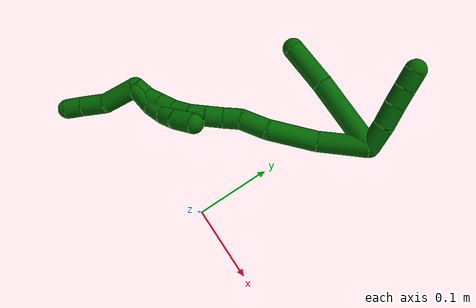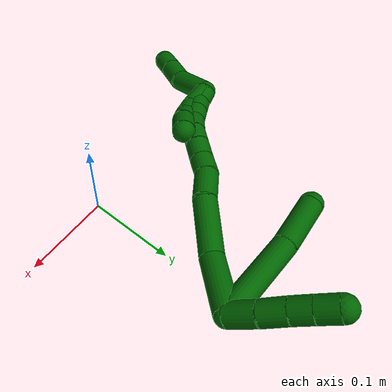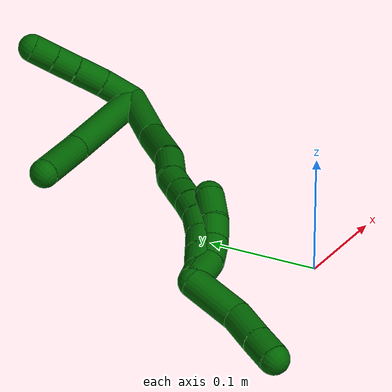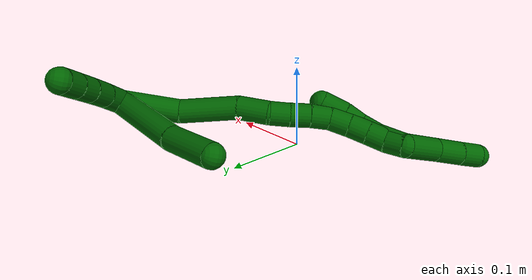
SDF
<sdf version="1.7">
 <world name="default">
  <model name="6">
   <static>0</static>
   <link name="6">
    <collision name="collision-cylinder-e_1_2_8">
     <pose>-0.041515 -0.019142 -0.012114 2.13503 -1.07129 -1.64585</pose>
     <geometry><cylinder><radius>0.0125</radius><length>0.094588</length></cylinder></geometry>
     <surface>
      <friction><ode><mu>1.16</mu><mu2>1.16</mu2><slip1>0</slip1><slip2>0</slip2></ode></friction>
      <contact><ode><kp>1e+06</kp><kd>1</kd><max_vel>0</max_vel><min_depth>0.001</min_depth></ode></contact>
     </surface>
    </collision>
    <visual name="visual-cylinder-e_1_2_8">
     <pose>-0.041515 -0.019142 -0.012114 2.13503 -1.07129 -1.64585</pose>
     <geometry><cylinder><radius>0.0125</radius><length>0.094588</length></cylinder></geometry>
     <material><ambient>0 0.392157 0.003922 1</ambient></material>
    </visual>
    <collision name="collision-cylinder-e_2_8_6">
     <pose>-0.105261 -0.052624 -0.032464 2.09209 -0.931236 -1.42969</pose>
     <geometry><cylinder><radius>0.0125</radius><length>0.055412</length></cylinder></geometry>
     <surface>
      <friction><ode><mu>1.16</mu><mu2>1.16</mu2><slip1>0</slip1><slip2>0</slip2></ode></friction>
      <contact><ode><kp>1e+06</kp><kd>1</kd><max_vel>0</max_vel><min_depth>0.001</min_depth></ode></contact>
     </surface>
    </collision>
    <visual name="visual-cylinder-e_2_8_6">
     <pose>-0.105261 -0.052624 -0.032464 2.09209 -0.931236 -1.42969</pose>
     <geometry><cylinder><radius>0.0125</radius><length>0.055412</length></cylinder></geometry>
     <material><ambient>0 0.392157 0.003922 1</ambient></material>
    </visual>
    <collision name="collision-cylinder-e_1_2_9">
     <pose>-0.005795 -0.007274 0.012106 0.541077 -0.389385 -0.109268</pose>
     <geometry><cylinder><radius>0.0125</radius><length>0.030532</length></cylinder></geometry>
     <surface>
      <friction><ode><mu>1.16</mu><mu2>1.16</mu2><slip1>0</slip1><slip2>0</slip2></ode></friction>
      <contact><ode><kp>1e+06</kp><kd>1</kd><max_vel>0</max_vel><min_depth>0.001</min_depth></ode></contact>
     </surface>
    </collision>
    <visual name="visual-cylinder-e_1_2_9">
     <pose>-0.005795 -0.007274 0.012106 0.541077 -0.389385 -0.109268</pose>
     <geometry><cylinder><radius>0.0125</radius><length>0.030532</length></cylinder></geometry>
     <material><ambient>0 0.392157 0.003922 1</ambient></material>
    </visual>
    <collision name="collision-cylinder-e_2_9_10">
     <pose>-0.017736 -0.021033 0.034157 0.577765 -0.477636 -0.144462</pose>
     <geometry><cylinder><radius>0.0125</radius><length>0.026737</length></cylinder></geometry>
     <surface>
      <friction><ode><mu>1.16</mu><mu2>1.16</mu2><slip1>0</slip1><slip2>0</slip2></ode></friction>
      <contact><ode><kp>1e+06</kp><kd>1</kd><max_vel>0</max_vel><min_depth>0.001</min_depth></ode></contact>
     </surface>
    </collision>
    <visual name="visual-cylinder-e_2_9_10">
     <pose>-0.017736 -0.021033 0.034157 0.577765 -0.477636 -0.144462</pose>
     <geometry><cylinder><radius>0.0125</radius><length>0.026737</length></cylinder></geometry>
     <material><ambient>0 0.392157 0.003922 1</ambient></material>
    </visual>
    <collision name="collision-cylinder-e_3_10_11">
     <pose>-0.028639 -0.032426 0.052204 0.544757 -0.465463 -0.13222</pose>
     <geometry><cylinder><radius>0.0125</radius><length>0.021202</length></cylinder></geometry>
     <surface>
      <friction><ode><mu>1.16</mu><mu2>1.16</mu2><slip1>0</slip1><slip2>0</slip2></ode></friction>
      <contact><ode><kp>1e+06</kp><kd>1</kd><max_vel>0</max_vel><min_depth>0.001</min_depth></ode></contact>
     </surface>
    </collision>
    <visual name="visual-cylinder-e_3_10_11">
     <pose>-0.028639 -0.032426 0.052204 0.544757 -0.465463 -0.13222</pose>
     <geometry><cylinder><radius>0.0125</radius><length>0.021202</length></cylinder></geometry>
     <material><ambient>0 0.392157 0.003922 1</ambient></material>
    </visual>
    <collision name="collision-cylinder-e_4_11_5">
     <pose>-0.038137 -0.04228 0.06861 0.537103 -0.455955 -0.127525</pose>
     <geometry><cylinder><radius>0.0125</radius><length>0.02153</length></cylinder></geometry>
     <surface>
      <friction><ode><mu>1.16</mu><mu2>1.16</mu2><slip1>0</slip1><slip2>0</slip2></ode></friction>
      <contact><ode><kp>1e+06</kp><kd>1</kd><max_vel>0</max_vel><min_depth>0.001</min_depth></ode></contact>
     </surface>
    </collision>
    <visual name="visual-cylinder-e_4_11_5">
     <pose>-0.038137 -0.04228 0.06861 0.537103 -0.455955 -0.127525</pose>
     <geometry><cylinder><radius>0.0125</radius><length>0.02153</length></cylinder></geometry>
     <material><ambient>0 0.392157 0.003922 1</ambient></material>
    </visual>
    <collision name="collision-cylinder-e_1_2_12">
     <pose>-0.010705 -0.010171 -0.026676 2.77733 -0.358735 -1.55516</pose>
     <geometry><cylinder><radius>0.0125</radius><length>0.06098</length></cylinder></geometry>
     <surface>
      <friction><ode><mu>1.16</mu><mu2>1.16</mu2><slip1>0</slip1><slip2>0</slip2></ode></friction>
      <contact><ode><kp>1e+06</kp><kd>1</kd><max_vel>0</max_vel><min_depth>0.001</min_depth></ode></contact>
     </surface>
    </collision>
    <visual name="visual-cylinder-e_1_2_12">
     <pose>-0.010705 -0.010171 -0.026676 2.77733 -0.358735 -1.55516</pose>
     <geometry><cylinder><radius>0.0125</radius><length>0.06098</length></cylinder></geometry>
     <material><ambient>0 0.392157 0.003922 1</ambient></material>
    </visual>
    <collision name="collision-cylinder-e_2_12_13">
     <pose>-0.030931 -0.03804 -0.076256 2.48374 -0.317792 -0.877877</pose>
     <geometry><cylinder><radius>0.0125</radius><length>0.060944</length></cylinder></geometry>
     <surface>
      <friction><ode><mu>1.16</mu><mu2>1.16</mu2><slip1>0</slip1><slip2>0</slip2></ode></friction>
      <contact><ode><kp>1e+06</kp><kd>1</kd><max_vel>0</max_vel><min_depth>0.001</min_depth></ode></contact>
     </surface>
    </collision>
    <visual name="visual-cylinder-e_2_12_13">
     <pose>-0.030931 -0.03804 -0.076256 2.48374 -0.317792 -0.877877</pose>
     <geometry><cylinder><radius>0.0125</radius><length>0.060944</length></cylinder></geometry>
     <material><ambient>0 0.392157 0.003922 1</ambient></material>
    </visual>
    <collision name="collision-cylinder-e_3_13_14">
     <pose>-0.049175 -0.063257 -0.110985 2.57516 -0.556822 -1.55274</pose>
     <geometry><cylinder><radius>0.0125</radius><length>0.033009</length></cylinder></geometry>
     <surface>
      <friction><ode><mu>1.16</mu><mu2>1.16</mu2><slip1>0</slip1><slip2>0</slip2></ode></friction>
      <contact><ode><kp>1e+06</kp><kd>1</kd><max_vel>0</max_vel><min_depth>0.001</min_depth></ode></contact>
     </surface>
    </collision>
    <visual name="visual-cylinder-e_3_13_14">
     <pose>-0.049175 -0.063257 -0.110985 2.57516 -0.556822 -1.55274</pose>
     <geometry><cylinder><radius>0.0125</radius><length>0.033009</length></cylinder></geometry>
     <material><ambient>0 0.392157 0.003922 1</ambient></material>
    </visual>
    <collision name="collision-cylinder-e_4_14_15">
     <pose>-0.06094 -0.07472 -0.132028 2.73741 -0.294584 -1.25349</pose>
     <geometry><cylinder><radius>0.0125</radius><length>0.02096</length></cylinder></geometry>
     <surface>
      <friction><ode><mu>1.16</mu><mu2>1.16</mu2><slip1>0</slip1><slip2>0</slip2></ode></friction>
      <contact><ode><kp>1e+06</kp><kd>1</kd><max_vel>0</max_vel><min_depth>0.001</min_depth></ode></contact>
     </surface>
    </collision>
    <visual name="visual-cylinder-e_4_14_15">
     <pose>-0.06094 -0.07472 -0.132028 2.73741 -0.294584 -1.25349</pose>
     <geometry><cylinder><radius>0.0125</radius><length>0.02096</length></cylinder></geometry>
     <material><ambient>0 0.392157 0.003922 1</ambient></material>
    </visual>
    <collision name="collision-cylinder-e_5_15_16">
     <pose>-0.067002 -0.083243 -0.150425 2.67871 -0.286322 -1.0979</pose>
     <geometry><cylinder><radius>0.0125</radius><length>0.021383</length></cylinder></geometry>
     <surface>
      <friction><ode><mu>1.16</mu><mu2>1.16</mu2><slip1>0</slip1><slip2>0</slip2></ode></friction>
      <contact><ode><kp>1e+06</kp><kd>1</kd><max_vel>0</max_vel><min_depth>0.001</min_depth></ode></contact>
     </surface>
    </collision>
    <visual name="visual-cylinder-e_5_15_16">
     <pose>-0.067002 -0.083243 -0.150425 2.67871 -0.286322 -1.0979</pose>
     <geometry><cylinder><radius>0.0125</radius><length>0.021383</length></cylinder></geometry>
     <material><ambient>0 0.392157 0.003922 1</ambient></material>
    </visual>
    <collision name="collision-cylinder-e_6_16_17">
     <pose>-0.073368 -0.091555 -0.16838 2.73959 -0.337383 -1.39246</pose>
     <geometry><cylinder><radius>0.0125</radius><length>0.020216</length></cylinder></geometry>
     <surface>
      <friction><ode><mu>1.16</mu><mu2>1.16</mu2><slip1>0</slip1><slip2>0</slip2></ode></friction>
      <contact><ode><kp>1e+06</kp><kd>1</kd><max_vel>0</max_vel><min_depth>0.001</min_depth></ode></contact>
     </surface>
    </collision>
    <visual name="visual-cylinder-e_6_16_17">
     <pose>-0.073368 -0.091555 -0.16838 2.73959 -0.337383 -1.39246</pose>
     <geometry><cylinder><radius>0.0125</radius><length>0.020216</length></cylinder></geometry>
     <material><ambient>0 0.392157 0.003922 1</ambient></material>
    </visual>
    <collision name="collision-cylinder-e_7_17_18">
     <pose>-0.082499 -0.097919 -0.185853 2.84766 -0.566993 -2.20138</pose>
     <geometry><cylinder><radius>0.0125</radius><length>0.02154</length></cylinder></geometry>
     <surface>
      <friction><ode><mu>1.16</mu><mu2>1.16</mu2><slip1>0</slip1><slip2>0</slip2></ode></friction>
      <contact><ode><kp>1e+06</kp><kd>1</kd><max_vel>0</max_vel><min_depth>0.001</min_depth></ode></contact>
     </surface>
    </collision>
    <visual name="visual-cylinder-e_7_17_18">
     <pose>-0.082499 -0.097919 -0.185853 2.84766 -0.566993 -2.20138</pose>
     <geometry><cylinder><radius>0.0125</radius><length>0.02154</length></cylinder></geometry>
     <material><ambient>0 0.392157 0.003922 1</ambient></material>
    </visual>
    <collision name="collision-cylinder-e_8_18_19">
     <pose>-0.095044 -0.103414 -0.201688 2.7602 -0.721008 -2.19508</pose>
     <geometry><cylinder><radius>0.0125</radius><length>0.020482</length></cylinder></geometry>
     <surface>
      <friction><ode><mu>1.16</mu><mu2>1.16</mu2><slip1>0</slip1><slip2>0</slip2></ode></friction>
      <contact><ode><kp>1e+06</kp><kd>1</kd><max_vel>0</max_vel><min_depth>0.001</min_depth></ode></contact>
     </surface>
    </collision>
    <visual name="visual-cylinder-e_8_18_19">
     <pose>-0.095044 -0.103414 -0.201688 2.7602 -0.721008 -2.19508</pose>
     <geometry><cylinder><radius>0.0125</radius><length>0.020482</length></cylinder></geometry>
     <material><ambient>0 0.392157 0.003922 1</ambient></material>
    </visual>
    <collision name="collision-cylinder-e_9_19_20">
     <pose>-0.10861 -0.109078 -0.215916 2.76526 -0.72897 -2.21576</pose>
     <geometry><cylinder><radius>0.0125</radius><length>0.020436</length></cylinder></geometry>
     <surface>
      <friction><ode><mu>1.16</mu><mu2>1.16</mu2><slip1>0</slip1><slip2>0</slip2></ode></friction>
      <contact><ode><kp>1e+06</kp><kd>1</kd><max_vel>0</max_vel><min_depth>0.001</min_depth></ode></contact>
     </surface>
    </collision>
    <visual name="visual-cylinder-e_9_19_20">
     <pose>-0.10861 -0.109078 -0.215916 2.76526 -0.72897 -2.21576</pose>
     <geometry><cylinder><radius>0.0125</radius><length>0.020436</length></cylinder></geometry>
     <material><ambient>0 0.392157 0.003922 1</ambient></material>
    </visual>
    <collision name="collision-cylinder-e_10_20_1">
     <pose>-0.122615 -0.116954 -0.227793 2.32726 -0.800916 -1.55224</pose>
     <geometry><cylinder><radius>0.0125</radius><length>0.020051</length></cylinder></geometry>
     <surface>
      <friction><ode><mu>1.16</mu><mu2>1.16</mu2><slip1>0</slip1><slip2>0</slip2></ode></friction>
      <contact><ode><kp>1e+06</kp><kd>1</kd><max_vel>0</max_vel><min_depth>0.001</min_depth></ode></contact>
     </surface>
    </collision>
    <visual name="visual-cylinder-e_10_20_1">
     <pose>-0.122615 -0.116954 -0.227793 2.32726 -0.800916 -1.55224</pose>
     <geometry><cylinder><radius>0.0125</radius><length>0.020051</length></cylinder></geometry>
     <material><ambient>0 0.392157 0.003922 1</ambient></material>
    </visual>
    <collision name="collision-cylinder-e_1_1_21">
     <pose>-0.116896 -0.114662 -0.226689 -0.896102 0.939961 -0.478919</pose>
     <geometry><cylinder><radius>0.0125</radius><length>0.031991</length></cylinder></geometry>
     <surface>
      <friction><ode><mu>1.16</mu><mu2>1.16</mu2><slip1>0</slip1><slip2>0</slip2></ode></friction>
      <contact><ode><kp>1e+06</kp><kd>1</kd><max_vel>0</max_vel><min_depth>0.001</min_depth></ode></contact>
     </surface>
    </collision>
    <visual name="visual-cylinder-e_1_1_21">
     <pose>-0.116896 -0.114662 -0.226689 -0.896102 0.939961 -0.478919</pose>
     <geometry><cylinder><radius>0.0125</radius><length>0.031991</length></cylinder></geometry>
     <material><ambient>0 0.392157 0.003922 1</ambient></material>
    </visual>
    <collision name="collision-cylinder-e_2_21_22">
     <pose>-0.095682 -0.105031 -0.214314 -0.335895 0.8795 -0.159196</pose>
     <geometry><cylinder><radius>0.0125</radius><length>0.021538</length></cylinder></geometry>
     <surface>
      <friction><ode><mu>1.16</mu><mu2>1.16</mu2><slip1>0</slip1><slip2>0</slip2></ode></friction>
      <contact><ode><kp>1e+06</kp><kd>1</kd><max_vel>0</max_vel><min_depth>0.001</min_depth></ode></contact>
     </surface>
    </collision>
    <visual name="visual-cylinder-e_2_21_22">
     <pose>-0.095682 -0.105031 -0.214314 -0.335895 0.8795 -0.159196</pose>
     <geometry><cylinder><radius>0.0125</radius><length>0.021538</length></cylinder></geometry>
     <material><ambient>0 0.392157 0.003922 1</ambient></material>
    </visual>
    <collision name="collision-cylinder-e_3_22_23">
     <pose>-0.080372 -0.102524 -0.200613 -0.033815 0.77067 -0.013717</pose>
     <geometry><cylinder><radius>0.0125</radius><length>0.020136</length></cylinder></geometry>
     <surface>
      <friction><ode><mu>1.16</mu><mu2>1.16</mu2><slip1>0</slip1><slip2>0</slip2></ode></friction>
      <contact><ode><kp>1e+06</kp><kd>1</kd><max_vel>0</max_vel><min_depth>0.001</min_depth></ode></contact>
     </surface>
    </collision>
    <visual name="visual-cylinder-e_3_22_23">
     <pose>-0.080372 -0.102524 -0.200613 -0.033815 0.77067 -0.013717</pose>
     <geometry><cylinder><radius>0.0125</radius><length>0.020136</length></cylinder></geometry>
     <material><ambient>0 0.392157 0.003922 1</ambient></material>
    </visual>
    <collision name="collision-cylinder-e_4_23_4">
     <pose>-0.065942 -0.100677 -0.182633 -0.147851 0.598322 -0.045675</pose>
     <geometry><cylinder><radius>0.0125</radius><length>0.026335</length></cylinder></geometry>
     <surface>
      <friction><ode><mu>1.16</mu><mu2>1.16</mu2><slip1>0</slip1><slip2>0</slip2></ode></friction>
      <contact><ode><kp>1e+06</kp><kd>1</kd><max_vel>0</max_vel><min_depth>0.001</min_depth></ode></contact>
     </surface>
    </collision>
    <visual name="visual-cylinder-e_4_23_4">
     <pose>-0.065942 -0.100677 -0.182633 -0.147851 0.598322 -0.045675</pose>
     <geometry><cylinder><radius>0.0125</radius><length>0.026335</length></cylinder></geometry>
     <material><ambient>0 0.392157 0.003922 1</ambient></material>
    </visual>
    <collision name="collision-cylinder-e_1_1_24">
     <pose>-0.128384 -0.12212 -0.255537 3.13763 0.062158 3.01423</pose>
     <geometry><cylinder><radius>0.0125</radius><length>0.045998</length></cylinder></geometry>
     <surface>
      <friction><ode><mu>1.16</mu><mu2>1.16</mu2><slip1>0</slip1><slip2>0</slip2></ode></friction>
      <contact><ode><kp>1e+06</kp><kd>1</kd><max_vel>0</max_vel><min_depth>0.001</min_depth></ode></contact>
     </surface>
    </collision>
    <visual name="visual-cylinder-e_1_1_24">
     <pose>-0.128384 -0.12212 -0.255537 3.13763 0.062158 3.01423</pose>
     <geometry><cylinder><radius>0.0125</radius><length>0.045998</length></cylinder></geometry>
     <material><ambient>0 0.392157 0.003922 1</ambient></material>
    </visual>
    <collision name="collision-cylinder-e_2_24_25">
     <pose>-0.129849 -0.125394 -0.293257 2.92925 -0.189283 -1.45533</pose>
     <geometry><cylinder><radius>0.0125</radius><length>0.030759</length></cylinder></geometry>
     <surface>
      <friction><ode><mu>1.16</mu><mu2>1.16</mu2><slip1>0</slip1><slip2>0</slip2></ode></friction>
      <contact><ode><kp>1e+06</kp><kd>1</kd><max_vel>0</max_vel><min_depth>0.001</min_depth></ode></contact>
     </surface>
    </collision>
    <visual name="visual-cylinder-e_2_24_25">
     <pose>-0.129849 -0.125394 -0.293257 2.92925 -0.189283 -1.45533</pose>
     <geometry><cylinder><radius>0.0125</radius><length>0.030759</length></cylinder></geometry>
     <material><ambient>0 0.392157 0.003922 1</ambient></material>
    </visual>
    <collision name="collision-cylinder-e_3_25_3">
     <pose>-0.134623 -0.130954 -0.319242 2.93287 -0.162501 -1.32168</pose>
     <geometry><cylinder><radius>0.0125</radius><length>0.023243</length></cylinder></geometry>
     <surface>
      <friction><ode><mu>1.16</mu><mu2>1.16</mu2><slip1>0</slip1><slip2>0</slip2></ode></friction>
      <contact><ode><kp>1e+06</kp><kd>1</kd><max_vel>0</max_vel><min_depth>0.001</min_depth></ode></contact>
     </surface>
    </collision>
    <visual name="visual-cylinder-e_3_25_3">
     <pose>-0.134623 -0.130954 -0.319242 2.93287 -0.162501 -1.32168</pose>
     <geometry><cylinder><radius>0.0125</radius><length>0.023243</length></cylinder></geometry>
     <material><ambient>0 0.392157 0.003922 1</ambient></material>
    </visual>
    <collision name="collision-sphere-3">
     <pose>-0.136503 -0.13333 -0.330462 0 -0 0</pose>
     <geometry><sphere><radius>0.0125</radius></sphere></geometry>
     <surface>
      <friction><ode><mu>1.16</mu><mu2>1.16</mu2><slip1>0</slip1><slip2>0</slip2></ode></friction>
      <contact><ode><kp>1e+06</kp><kd>1</kd><max_vel>0</max_vel><min_depth>0.001</min_depth></ode></contact>
     </surface>
    </collision>
    <visual name="visual-sphere-3">
     <pose>-0.136503 -0.13333 -0.330462 0 -0 0</pose>
     <geometry><sphere><radius>0.0125</radius></sphere></geometry>
     <material><ambient>0 0.392157 0.003922 1</ambient></material>
    </visual>
    <collision name="collision-sphere-25">
     <pose>-0.132743 -0.128578 -0.308022 0 -0 0</pose>
     <geometry><sphere><radius>0.0125</radius></sphere></geometry>
     <surface>
      <friction><ode><mu>1.16</mu><mu2>1.16</mu2><slip1>0</slip1><slip2>0</slip2></ode></friction>
      <contact><ode><kp>1e+06</kp><kd>1</kd><max_vel>0</max_vel><min_depth>0.001</min_depth></ode></contact>
     </surface>
    </collision>
    <visual name="visual-sphere-25">
     <pose>-0.132743 -0.128578 -0.308022 0 -0 0</pose>
     <geometry><sphere><radius>0.0125</radius></sphere></geometry>
     <material><ambient>0 0.392157 0.003922 1</ambient></material>
    </visual>
    <collision name="collision-sphere-24">
     <pose>-0.126956 -0.122211 -0.278491 0 -0 0</pose>
     <geometry><sphere><radius>0.0125</radius></sphere></geometry>
     <surface>
      <friction><ode><mu>1.16</mu><mu2>1.16</mu2><slip1>0</slip1><slip2>0</slip2></ode></friction>
      <contact><ode><kp>1e+06</kp><kd>1</kd><max_vel>0</max_vel><min_depth>0.001</min_depth></ode></contact>
     </surface>
    </collision>
    <visual name="visual-sphere-24">
     <pose>-0.126956 -0.122211 -0.278491 0 -0 0</pose>
     <geometry><sphere><radius>0.0125</radius></sphere></geometry>
     <material><ambient>0 0.392157 0.003922 1</ambient></material>
    </visual>
    <collision name="collision-sphere-4">
     <pose>-0.058525 -0.099074 -0.171871 0 -0 0</pose>
     <geometry><sphere><radius>0.0125</radius></sphere></geometry>
     <surface>
      <friction><ode><mu>1.16</mu><mu2>1.16</mu2><slip1>0</slip1><slip2>0</slip2></ode></friction>
      <contact><ode><kp>1e+06</kp><kd>1</kd><max_vel>0</max_vel><min_depth>0.001</min_depth></ode></contact>
     </surface>
    </collision>
    <visual name="visual-sphere-4">
     <pose>-0.058525 -0.099074 -0.171871 0 -0 0</pose>
     <geometry><sphere><radius>0.0125</radius></sphere></geometry>
     <material><ambient>0 0.392157 0.003922 1</ambient></material>
    </visual>
    <collision name="collision-sphere-23">
     <pose>-0.073359 -0.10228 -0.193394 0 -0 0</pose>
     <geometry><sphere><radius>0.0125</radius></sphere></geometry>
     <surface>
      <friction><ode><mu>1.16</mu><mu2>1.16</mu2><slip1>0</slip1><slip2>0</slip2></ode></friction>
      <contact><ode><kp>1e+06</kp><kd>1</kd><max_vel>0</max_vel><min_depth>0.001</min_depth></ode></contact>
     </surface>
    </collision>
    <visual name="visual-sphere-23">
     <pose>-0.073359 -0.10228 -0.193394 0 -0 0</pose>
     <geometry><sphere><radius>0.0125</radius></sphere></geometry>
     <material><ambient>0 0.392157 0.003922 1</ambient></material>
    </visual>
    <collision name="collision-sphere-22">
     <pose>-0.087386 -0.102768 -0.207832 0 -0 0</pose>
     <geometry><sphere><radius>0.0125</radius></sphere></geometry>
     <surface>
      <friction><ode><mu>1.16</mu><mu2>1.16</mu2><slip1>0</slip1><slip2>0</slip2></ode></friction>
      <contact><ode><kp>1e+06</kp><kd>1</kd><max_vel>0</max_vel><min_depth>0.001</min_depth></ode></contact>
     </surface>
    </collision>
    <visual name="visual-sphere-22">
     <pose>-0.087386 -0.102768 -0.207832 0 -0 0</pose>
     <geometry><sphere><radius>0.0125</radius></sphere></geometry>
     <material><ambient>0 0.392157 0.003922 1</ambient></material>
    </visual>
    <collision name="collision-sphere-21">
     <pose>-0.103979 -0.107294 -0.220796 0 -0 0</pose>
     <geometry><sphere><radius>0.0125</radius></sphere></geometry>
     <surface>
      <friction><ode><mu>1.16</mu><mu2>1.16</mu2><slip1>0</slip1><slip2>0</slip2></ode></friction>
      <contact><ode><kp>1e+06</kp><kd>1</kd><max_vel>0</max_vel><min_depth>0.001</min_depth></ode></contact>
     </surface>
    </collision>
    <visual name="visual-sphere-21">
     <pose>-0.103979 -0.107294 -0.220796 0 -0 0</pose>
     <geometry><sphere><radius>0.0125</radius></sphere></geometry>
     <material><ambient>0 0.392157 0.003922 1</ambient></material>
    </visual>
    <collision name="collision-sphere-1">
     <pose>-0.129813 -0.122029 -0.232583 0 -0 0</pose>
     <geometry><sphere><radius>0.0125</radius></sphere></geometry>
     <surface>
      <friction><ode><mu>1.16</mu><mu2>1.16</mu2><slip1>0</slip1><slip2>0</slip2></ode></friction>
      <contact><ode><kp>1e+06</kp><kd>1</kd><max_vel>0</max_vel><min_depth>0.001</min_depth></ode></contact>
     </surface>
    </collision>
    <visual name="visual-sphere-1">
     <pose>-0.129813 -0.122029 -0.232583 0 -0 0</pose>
     <geometry><sphere><radius>0.0125</radius></sphere></geometry>
     <material><ambient>0 0.392157 0.003922 1</ambient></material>
    </visual>
    <collision name="collision-sphere-11">
     <pose>-0.033397 -0.037335 0.060306 0 -0 0</pose>
     <geometry><sphere><radius>0.0125</radius></sphere></geometry>
     <surface>
      <friction><ode><mu>1.16</mu><mu2>1.16</mu2><slip1>0</slip1><slip2>0</slip2></ode></friction>
      <contact><ode><kp>1e+06</kp><kd>1</kd><max_vel>0</max_vel><min_depth>0.001</min_depth></ode></contact>
     </surface>
    </collision>
    <visual name="visual-sphere-11">
     <pose>-0.033397 -0.037335 0.060306 0 -0 0</pose>
     <geometry><sphere><radius>0.0125</radius></sphere></geometry>
     <material><ambient>0 0.392157 0.003922 1</ambient></material>
    </visual>
    <collision name="collision-sphere-10">
     <pose>-0.023881 -0.027517 0.044102 0 -0 0</pose>
     <geometry><sphere><radius>0.0125</radius></sphere></geometry>
     <surface>
      <friction><ode><mu>1.16</mu><mu2>1.16</mu2><slip1>0</slip1><slip2>0</slip2></ode></friction>
      <contact><ode><kp>1e+06</kp><kd>1</kd><max_vel>0</max_vel><min_depth>0.001</min_depth></ode></contact>
     </surface>
    </collision>
    <visual name="visual-sphere-10">
     <pose>-0.023881 -0.027517 0.044102 0 -0 0</pose>
     <geometry><sphere><radius>0.0125</radius></sphere></geometry>
     <material><ambient>0 0.392157 0.003922 1</ambient></material>
    </visual>
    <collision name="collision-sphere-6">
     <pose>-0.127491 -0.066964 -0.040699 0 -0 0</pose>
     <geometry><sphere><radius>0.0125</radius></sphere></geometry>
     <surface>
      <friction><ode><mu>1.16</mu><mu2>1.16</mu2><slip1>0</slip1><slip2>0</slip2></ode></friction>
      <contact><ode><kp>1e+06</kp><kd>1</kd><max_vel>0</max_vel><min_depth>0.001</min_depth></ode></contact>
     </surface>
    </collision>
    <visual name="visual-sphere-6">
     <pose>-0.127491 -0.066964 -0.040699 0 -0 0</pose>
     <geometry><sphere><radius>0.0125</radius></sphere></geometry>
     <material><ambient>0 0.392157 0.003922 1</ambient></material>
    </visual>
    <collision name="collision-sphere-9">
     <pose>-0.01159 -0.014548 0.024211 0 -0 0</pose>
     <geometry><sphere><radius>0.0125</radius></sphere></geometry>
     <surface>
      <friction><ode><mu>1.16</mu><mu2>1.16</mu2><slip1>0</slip1><slip2>0</slip2></ode></friction>
      <contact><ode><kp>1e+06</kp><kd>1</kd><max_vel>0</max_vel><min_depth>0.001</min_depth></ode></contact>
     </surface>
    </collision>
    <visual name="visual-sphere-9">
     <pose>-0.01159 -0.014548 0.024211 0 -0 0</pose>
     <geometry><sphere><radius>0.0125</radius></sphere></geometry>
     <material><ambient>0 0.392157 0.003922 1</ambient></material>
    </visual>
    <collision name="collision-sphere-2">
     <geometry><sphere><radius>0.0125</radius></sphere></geometry>
     <surface>
      <friction><ode><mu>1.16</mu><mu2>1.16</mu2><slip1>0</slip1><slip2>0</slip2></ode></friction>
      <contact><ode><kp>1e+06</kp><kd>1</kd><max_vel>0</max_vel><min_depth>0.001</min_depth></ode></contact>
     </surface>
    </collision>
    <visual name="visual-sphere-2">
     <geometry><sphere><radius>0.0125</radius></sphere></geometry>
     <material><ambient>0 0.392157 0.003922 1</ambient></material>
    </visual>
    <collision name="collision-sphere-19">
     <pose>-0.101804 -0.106277 -0.208828 0 -0 0</pose>
     <geometry><sphere><radius>0.0125</radius></sphere></geometry>
     <surface>
      <friction><ode><mu>1.16</mu><mu2>1.16</mu2><slip1>0</slip1><slip2>0</slip2></ode></friction>
      <contact><ode><kp>1e+06</kp><kd>1</kd><max_vel>0</max_vel><min_depth>0.001</min_depth></ode></contact>
     </surface>
    </collision>
    <visual name="visual-sphere-19">
     <pose>-0.101804 -0.106277 -0.208828 0 -0 0</pose>
     <geometry><sphere><radius>0.0125</radius></sphere></geometry>
     <material><ambient>0 0.392157 0.003922 1</ambient></material>
    </visual>
    <collision name="collision-sphere-8">
     <pose>-0.083031 -0.038284 -0.024229 0 -0 0</pose>
     <geometry><sphere><radius>0.0125</radius></sphere></geometry>
     <surface>
      <friction><ode><mu>1.16</mu><mu2>1.16</mu2><slip1>0</slip1><slip2>0</slip2></ode></friction>
      <contact><ode><kp>1e+06</kp><kd>1</kd><max_vel>0</max_vel><min_depth>0.001</min_depth></ode></contact>
     </surface>
    </collision>
    <visual name="visual-sphere-8">
     <pose>-0.083031 -0.038284 -0.024229 0 -0 0</pose>
     <geometry><sphere><radius>0.0125</radius></sphere></geometry>
     <material><ambient>0 0.392157 0.003922 1</ambient></material>
    </visual>
    <collision name="collision-sphere-5">
     <pose>-0.042877 -0.047225 0.076914 0 -0 0</pose>
     <geometry><sphere><radius>0.0125</radius></sphere></geometry>
     <surface>
      <friction><ode><mu>1.16</mu><mu2>1.16</mu2><slip1>0</slip1><slip2>0</slip2></ode></friction>
      <contact><ode><kp>1e+06</kp><kd>1</kd><max_vel>0</max_vel><min_depth>0.001</min_depth></ode></contact>
     </surface>
    </collision>
    <visual name="visual-sphere-5">
     <pose>-0.042877 -0.047225 0.076914 0 -0 0</pose>
     <geometry><sphere><radius>0.0125</radius></sphere></geometry>
     <material><ambient>0 0.392157 0.003922 1</ambient></material>
    </visual>
    <collision name="collision-sphere-12">
     <pose>-0.021409 -0.020342 -0.053351 0 -0 0</pose>
     <geometry><sphere><radius>0.0125</radius></sphere></geometry>
     <surface>
      <friction><ode><mu>1.16</mu><mu2>1.16</mu2><slip1>0</slip1><slip2>0</slip2></ode></friction>
      <contact><ode><kp>1e+06</kp><kd>1</kd><max_vel>0</max_vel><min_depth>0.001</min_depth></ode></contact>
     </surface>
    </collision>
    <visual name="visual-sphere-12">
     <pose>-0.021409 -0.020342 -0.053351 0 -0 0</pose>
     <geometry><sphere><radius>0.0125</radius></sphere></geometry>
     <material><ambient>0 0.392157 0.003922 1</ambient></material>
    </visual>
    <collision name="collision-sphere-13">
     <pose>-0.040452 -0.055738 -0.099162 0 -0 0</pose>
     <geometry><sphere><radius>0.0125</radius></sphere></geometry>
     <surface>
      <friction><ode><mu>1.16</mu><mu2>1.16</mu2><slip1>0</slip1><slip2>0</slip2></ode></friction>
      <contact><ode><kp>1e+06</kp><kd>1</kd><max_vel>0</max_vel><min_depth>0.001</min_depth></ode></contact>
     </surface>
    </collision>
    <visual name="visual-sphere-13">
     <pose>-0.040452 -0.055738 -0.099162 0 -0 0</pose>
     <geometry><sphere><radius>0.0125</radius></sphere></geometry>
     <material><ambient>0 0.392157 0.003922 1</ambient></material>
    </visual>
    <collision name="collision-sphere-14">
     <pose>-0.057897 -0.070776 -0.122808 0 -0 0</pose>
     <geometry><sphere><radius>0.0125</radius></sphere></geometry>
     <surface>
      <friction><ode><mu>1.16</mu><mu2>1.16</mu2><slip1>0</slip1><slip2>0</slip2></ode></friction>
      <contact><ode><kp>1e+06</kp><kd>1</kd><max_vel>0</max_vel><min_depth>0.001</min_depth></ode></contact>
     </surface>
    </collision>
    <visual name="visual-sphere-14">
     <pose>-0.057897 -0.070776 -0.122808 0 -0 0</pose>
     <geometry><sphere><radius>0.0125</radius></sphere></geometry>
     <material><ambient>0 0.392157 0.003922 1</ambient></material>
    </visual>
    <collision name="collision-sphere-15">
     <pose>-0.063983 -0.078663 -0.141248 0 -0 0</pose>
     <geometry><sphere><radius>0.0125</radius></sphere></geometry>
     <surface>
      <friction><ode><mu>1.16</mu><mu2>1.16</mu2><slip1>0</slip1><slip2>0</slip2></ode></friction>
      <contact><ode><kp>1e+06</kp><kd>1</kd><max_vel>0</max_vel><min_depth>0.001</min_depth></ode></contact>
     </surface>
    </collision>
    <visual name="visual-sphere-15">
     <pose>-0.063983 -0.078663 -0.141248 0 -0 0</pose>
     <geometry><sphere><radius>0.0125</radius></sphere></geometry>
     <material><ambient>0 0.392157 0.003922 1</ambient></material>
    </visual>
    <collision name="collision-sphere-16">
     <pose>-0.070022 -0.087823 -0.159602 0 -0 0</pose>
     <geometry><sphere><radius>0.0125</radius></sphere></geometry>
     <surface>
      <friction><ode><mu>1.16</mu><mu2>1.16</mu2><slip1>0</slip1><slip2>0</slip2></ode></friction>
      <contact><ode><kp>1e+06</kp><kd>1</kd><max_vel>0</max_vel><min_depth>0.001</min_depth></ode></contact>
     </surface>
    </collision>
    <visual name="visual-sphere-16">
     <pose>-0.070022 -0.087823 -0.159602 0 -0 0</pose>
     <geometry><sphere><radius>0.0125</radius></sphere></geometry>
     <material><ambient>0 0.392157 0.003922 1</ambient></material>
    </visual>
    <collision name="collision-sphere-17">
     <pose>-0.076714 -0.095287 -0.177158 0 -0 0</pose>
     <geometry><sphere><radius>0.0125</radius></sphere></geometry>
     <surface>
      <friction><ode><mu>1.16</mu><mu2>1.16</mu2><slip1>0</slip1><slip2>0</slip2></ode></friction>
      <contact><ode><kp>1e+06</kp><kd>1</kd><max_vel>0</max_vel><min_depth>0.001</min_depth></ode></contact>
     </surface>
    </collision>
    <visual name="visual-sphere-17">
     <pose>-0.076714 -0.095287 -0.177158 0 -0 0</pose>
     <geometry><sphere><radius>0.0125</radius></sphere></geometry>
     <material><ambient>0 0.392157 0.003922 1</ambient></material>
    </visual>
    <collision name="collision-sphere-18">
     <pose>-0.088283 -0.100551 -0.194549 0 -0 0</pose>
     <geometry><sphere><radius>0.0125</radius></sphere></geometry>
     <surface>
      <friction><ode><mu>1.16</mu><mu2>1.16</mu2><slip1>0</slip1><slip2>0</slip2></ode></friction>
      <contact><ode><kp>1e+06</kp><kd>1</kd><max_vel>0</max_vel><min_depth>0.001</min_depth></ode></contact>
     </surface>
    </collision>
    <visual name="visual-sphere-18">
     <pose>-0.088283 -0.100551 -0.194549 0 -0 0</pose>
     <geometry><sphere><radius>0.0125</radius></sphere></geometry>
     <material><ambient>0 0.392157 0.003922 1</ambient></material>
    </visual>
    <collision name="collision-sphere-20">
     <pose>-0.115417 -0.111879 -0.223004 0 -0 0</pose>
     <geometry><sphere><radius>0.0125</radius></sphere></geometry>
     <surface>
      <friction><ode><mu>1.16</mu><mu2>1.16</mu2><slip1>0</slip1><slip2>0</slip2></ode></friction>
      <contact><ode><kp>1e+06</kp><kd>1</kd><max_vel>0</max_vel><min_depth>0.001</min_depth></ode></contact>
     </surface>
    </collision>
    <visual name="visual-sphere-20">
     <pose>-0.115417 -0.111879 -0.223004 0 -0 0</pose>
     <geometry><sphere><radius>0.0125</radius></sphere></geometry>
     <material><ambient>0 0.392157 0.003922 1</ambient></material>
    </visual>
    <inertial>
     <pose>-0.067705 -0.065731 -0.112572 0 -0 0</pose>
     <mass>0.75</mass>
     <inertia>
      <ixx>-0.0001</ixx>
      <ixy>0</ixy>
      <ixz>0</ixz>
      <iyy>-2.3e-05</iyy>
      <iyz>0</iyz>
      <izz>0.000146</izz>
     </inertia>
    </inertial>
   </link>
   <pose>0.046815 0.206805 0.095374 -1.16391 -0.432164 -0.41274</pose>
  </model>
 </world>
</sdf>
